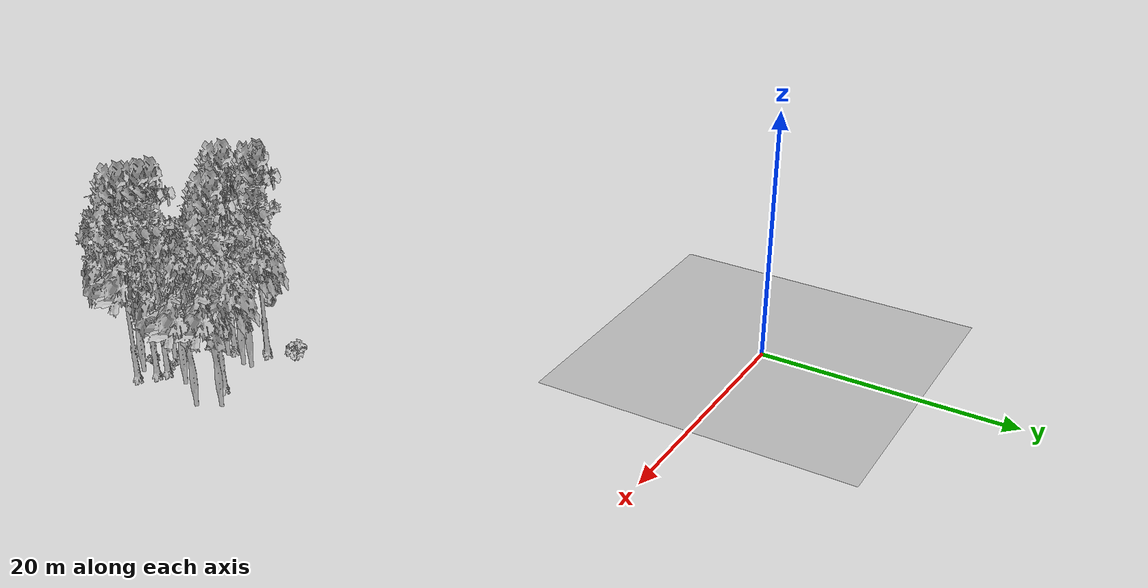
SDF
<sdf version="1.7">
 <world name="default">
  <model name="ground_plane">
   <static>1</static>
   <link name="link">
    <collision name="collision">
     <pose>-50 0 0 0 -0 0</pose>
     <geometry><plane><normal>0 0 1</normal><size>80 80</size></plane></geometry>
     <surface><contact><ode><min_depth>0.01</min_depth><max_vel>0</max_vel></ode></contact></surface>
    </collision>
    <visual name="grass">
     <cast_shadows>0</cast_shadows>
     <geometry>
      <mesh>
       <scale>0.46714285714285714 0.46714285714285714 0.1</scale>
       <uri>file://grass_plane/meshes/grass_plane.dae</uri>
      </mesh>
     </geometry>
    </visual>
   </link>
  </model>
  <model name="Tree 2">
   <static>1</static>
   <pose>21.608973467380785 -35.33875538457476 0 1.57079 -0 0</pose>
   <link name="link">
    <collision name="collision">
     <geometry><mesh><scale>3.5 5 3.5</scale><uri>model://tree_2/meshes/tree_2.obj</uri></mesh></geometry>
    </collision>
    <visual name="visual">
     <geometry><mesh><scale>3.5 5 3.5</scale><uri>model://tree_2/meshes/tree_2.obj</uri></mesh></geometry>
    </visual>
   </link>
  </model>
  <model name="Tree 47">
   <static>1</static>
   <pose>25.869457155707735 -37.62644119133291 0 1.57079 -0 0</pose>
   <link name="link">
    <collision name="collision">
     <geometry><mesh><scale>3.5 5 3.5</scale><uri>model://tree_9/meshes/tree_9.obj</uri></mesh></geometry>
    </collision>
    <visual name="visual">
     <geometry><mesh><scale>3.5 5 3.5</scale><uri>model://tree_9/meshes/tree_9.obj</uri></mesh></geometry>
    </visual>
   </link>
  </model>
  <model name="Tree 88">
   <static>1</static>
   <pose>25.355638875150163 -32.29025003243599 0 1.57079 -0 0</pose>
   <link name="link">
    <collision name="collision">
     <geometry><mesh><scale>3.5 5 3.5</scale><uri>model://tree_9/meshes/tree_9.obj</uri></mesh></geometry>
    </collision>
    <visual name="visual">
     <geometry><mesh><scale>3.5 5 3.5</scale><uri>model://tree_9/meshes/tree_9.obj</uri></mesh></geometry>
    </visual>
   </link>
  </model>
  <model name="Tree 117">
   <static>1</static>
   <pose>22.027832210913573 -32.55739553822966 0 1.57079 -0 0</pose>
   <link name="link">
    <collision name="collision">
     <geometry><mesh><scale>3.5 5 3.5</scale><uri>model://tree_2/meshes/tree_2.obj</uri></mesh></geometry>
    </collision>
    <visual name="visual">
     <geometry><mesh><scale>3.5 5 3.5</scale><uri>model://tree_2/meshes/tree_2.obj</uri></mesh></geometry>
    </visual>
   </link>
  </model>
  <model name="Tree 314">
   <static>1</static>
   <pose>19.71929100239216 -33.095928186460256 0 1.57079 -0 0</pose>
   <link name="link">
    <collision name="collision">
     <geometry><mesh><scale>3.5 5 3.5</scale><uri>model://tree_9/meshes/tree_9.obj</uri></mesh></geometry>
    </collision>
    <visual name="visual">
     <geometry><mesh><scale>3.5 5 3.5</scale><uri>model://tree_9/meshes/tree_9.obj</uri></mesh></geometry>
    </visual>
   </link>
  </model>
  <model name="Tree 330">
   <static>1</static>
   <pose>27.321533131071618 -30.615881601654927 0 1.57079 -0 0</pose>
   <link name="link">
    <collision name="collision">
     <geometry><mesh><scale>3.5 5 3.5</scale><uri>model://tree_2/meshes/tree_2.obj</uri></mesh></geometry>
    </collision>
    <visual name="visual">
     <geometry><mesh><scale>3.5 5 3.5</scale><uri>model://tree_2/meshes/tree_2.obj</uri></mesh></geometry>
    </visual>
   </link>
  </model>
  <model name="Tree 378">
   <static>1</static>
   <pose>26.55257672807339 -38.04444349236269 0 1.57079 -0 0</pose>
   <link name="link">
    <collision name="collision">
     <geometry><mesh><scale>3.5 5 3.5</scale><uri>model://tree_9/meshes/tree_9.obj</uri></mesh></geometry>
    </collision>
    <visual name="visual">
     <geometry><mesh><scale>3.5 5 3.5</scale><uri>model://tree_9/meshes/tree_9.obj</uri></mesh></geometry>
    </visual>
   </link>
  </model>
  <model name="Tree 405">
   <static>1</static>
   <pose>24.02431933473906 -37.44851633894263 0 1.57079 -0 0</pose>
   <link name="link">
    <collision name="collision">
     <geometry><mesh><scale>3.5 5 3.5</scale><uri>model://tree_2/meshes/tree_2.obj</uri></mesh></geometry>
    </collision>
    <visual name="visual">
     <geometry><mesh><scale>3.5 5 3.5</scale><uri>model://tree_2/meshes/tree_2.obj</uri></mesh></geometry>
    </visual>
   </link>
  </model>
  <model name="Tree 447">
   <static>1</static>
   <pose>22.056040395260347 -33.3468992721528 0 1.57079 -0 0</pose>
   <link name="link">
    <collision name="collision">
     <geometry><mesh><scale>3.5 5 3.5</scale><uri>model://tree_2/meshes/tree_2.obj</uri></mesh></geometry>
    </collision>
    <visual name="visual">
     <geometry><mesh><scale>3.5 5 3.5</scale><uri>model://tree_2/meshes/tree_2.obj</uri></mesh></geometry>
    </visual>
   </link>
  </model>
  <model name="Tree 453">
   <static>1</static>
   <pose>19.394317091972752 -33.46115470122737 0 1.57079 -0 0</pose>
   <link name="link">
    <collision name="collision">
     <geometry><mesh><scale>3.5 5 3.5</scale><uri>model://tree_9/meshes/tree_9.obj</uri></mesh></geometry>
    </collision>
    <visual name="visual">
     <geometry><mesh><scale>3.5 5 3.5</scale><uri>model://tree_9/meshes/tree_9.obj</uri></mesh></geometry>
    </visual>
   </link>
  </model>
  <model name="Tree 454">
   <static>1</static>
   <pose>28.241238900410366 -32.21158542593414 0 1.57079 -0 0</pose>
   <link name="link">
    <collision name="collision">
     <geometry><mesh><scale>3.5 5 3.5</scale><uri>model://tree_2/meshes/tree_2.obj</uri></mesh></geometry>
    </collision>
    <visual name="visual">
     <geometry><mesh><scale>3.5 5 3.5</scale><uri>model://tree_2/meshes/tree_2.obj</uri></mesh></geometry>
    </visual>
   </link>
  </model>
  <model name="Tree 469">
   <static>1</static>
   <pose>26.791310603787934 -39.078006564322436 0 1.57079 -0 0</pose>
   <link name="link">
    <collision name="collision">
     <geometry><mesh><scale>3.5 5 3.5</scale><uri>model://tree_2/meshes/tree_2.obj</uri></mesh></geometry>
    </collision>
    <visual name="visual">
     <geometry><mesh><scale>3.5 5 3.5</scale><uri>model://tree_2/meshes/tree_2.obj</uri></mesh></geometry>
    </visual>
   </link>
  </model>
  <model name="Tree 485">
   <static>1</static>
   <pose>27.67022086361615 -38.93454672484795 0 1.57079 -0 0</pose>
   <link name="link">
    <collision name="collision">
     <geometry><mesh><scale>3.5 5 3.5</scale><uri>model://tree_9/meshes/tree_9.obj</uri></mesh></geometry>
    </collision>
    <visual name="visual">
     <geometry><mesh><scale>3.5 5 3.5</scale><uri>model://tree_9/meshes/tree_9.obj</uri></mesh></geometry>
    </visual>
   </link>
  </model>
  <model name="Tree 600">
   <static>1</static>
   <pose>20.72466815331819 -35.5840623915011 0 1.57079 -0 0</pose>
   <link name="link">
    <collision name="collision">
     <geometry><mesh><scale>3.5 5 3.5</scale><uri>model://tree_9/meshes/tree_9.obj</uri></mesh></geometry>
    </collision>
    <visual name="visual">
     <geometry><mesh><scale>3.5 5 3.5</scale><uri>model://tree_9/meshes/tree_9.obj</uri></mesh></geometry>
    </visual>
   </link>
  </model>
  <model name="Tree 623">
   <static>1</static>
   <pose>26.427169034373975 -35.08096145605311 0 1.57079 -0 0</pose>
   <link name="link">
    <collision name="collision">
     <geometry><mesh><scale>3.5 5 3.5</scale><uri>model://tree_2/meshes/tree_2.obj</uri></mesh></geometry>
    </collision>
    <visual name="visual">
     <geometry><mesh><scale>3.5 5 3.5</scale><uri>model://tree_2/meshes/tree_2.obj</uri></mesh></geometry>
    </visual>
   </link>
  </model>
  <model name="Tree 636">
   <static>1</static>
   <pose>24.365278615958736 -38.23205802731308 0 1.57079 -0 0</pose>
   <link name="link">
    <collision name="collision">
     <geometry><mesh><scale>3.5 5 3.5</scale><uri>model://tree_2/meshes/tree_2.obj</uri></mesh></geometry>
    </collision>
    <visual name="visual">
     <geometry><mesh><scale>3.5 5 3.5</scale><uri>model://tree_2/meshes/tree_2.obj</uri></mesh></geometry>
    </visual>
   </link>
  </model>
  <model name="Bush 5">
   <static>1</static>
   <pose>21.250394875400687 -35.72269470915857 0 1.57079 -0 0</pose>
   <link name="link">
    <collision name="collision">
     <geometry><mesh><scale>2 2 2</scale><uri>model://bush_2/meshes/bush_2.obj</uri></mesh></geometry>
     <surface><contact><collide_without_contact>false</collide_without_contact></contact></surface>
    </collision>
    <visual name="visual">
     <geometry><mesh><scale>2 2 2</scale><uri>model://bush_2/meshes/bush_2.obj</uri></mesh></geometry>
    </visual>
   </link>
  </model>
  <model name="Bush 85">
   <static>1</static>
   <pose>21.970875419244493 -39.141250273955606 0 1.57079 -0 0</pose>
   <link name="link">
    <collision name="collision">
     <geometry><mesh><scale>2 2 2</scale><uri>model://bush_2/meshes/bush_2.obj</uri></mesh></geometry>
     <surface><contact><collide_without_contact>false</collide_without_contact></contact></surface>
    </collision>
    <visual name="visual">
     <geometry><mesh><scale>2 2 2</scale><uri>model://bush_2/meshes/bush_2.obj</uri></mesh></geometry>
    </visual>
   </link>
  </model>
  <model name="Bush 207">
   <static>1</static>
   <pose>25.335852047101127 -39.70689490056135 0 1.57079 -0 0</pose>
   <link name="link">
    <collision name="collision">
     <geometry><mesh><scale>2 2 2</scale><uri>model://bush_2/meshes/bush_2.obj</uri></mesh></geometry>
     <surface><contact><collide_without_contact>false</collide_without_contact></contact></surface>
    </collision>
    <visual name="visual">
     <geometry><mesh><scale>2 2 2</scale><uri>model://bush_2/meshes/bush_2.obj</uri></mesh></geometry>
    </visual>
   </link>
  </model>
  <model name="Bush 243">
   <static>1</static>
   <pose>23.526550749145677 -38.39133610960373 0 1.57079 -0 0</pose>
   <link name="link">
    <collision name="collision">
     <geometry><mesh><scale>2 2 2</scale><uri>model://bush_2/meshes/bush_2.obj</uri></mesh></geometry>
     <surface><contact><collide_without_contact>false</collide_without_contact></contact></surface>
    </collision>
    <visual name="visual">
     <geometry><mesh><scale>2 2 2</scale><uri>model://bush_2/meshes/bush_2.obj</uri></mesh></geometry>
    </visual>
   </link>
  </model>
  <model name="Bush 265">
   <static>1</static>
   <pose>21.287825253715837 -39.266217135695726 0 1.57079 -0 0</pose>
   <link name="link">
    <collision name="collision">
     <geometry><mesh><scale>2 2 2</scale><uri>model://bush_1/meshes/bush_1.obj</uri></mesh></geometry>
     <surface><contact><collide_without_contact>false</collide_without_contact></contact></surface>
    </collision>
    <visual name="visual">
     <geometry><mesh><scale>2 2 2</scale><uri>model://bush_1/meshes/bush_1.obj</uri></mesh></geometry>
    </visual>
   </link>
  </model>
  <model name="Bush 381">
   <static>1</static>
   <pose>19.744107185180944 -30.268392388027337 0 1.57079 -0 0</pose>
   <link name="link">
    <collision name="collision">
     <geometry><mesh><scale>2 2 2</scale><uri>model://bush_1/meshes/bush_1.obj</uri></mesh></geometry>
     <surface><contact><collide_without_contact>false</collide_without_contact></contact></surface>
    </collision>
    <visual name="visual">
     <geometry><mesh><scale>2 2 2</scale><uri>model://bush_1/meshes/bush_1.obj</uri></mesh></geometry>
    </visual>
   </link>
  </model>
  <model name="Bush 456">
   <static>1</static>
   <pose>25.096616064852796 -37.960009955514906 0 1.57079 -0 0</pose>
   <link name="link">
    <collision name="collision">
     <geometry><mesh><scale>2 2 2</scale><uri>model://bush_2/meshes/bush_2.obj</uri></mesh></geometry>
     <surface><contact><collide_without_contact>false</collide_without_contact></contact></surface>
    </collision>
    <visual name="visual">
     <geometry><mesh><scale>2 2 2</scale><uri>model://bush_2/meshes/bush_2.obj</uri></mesh></geometry>
    </visual>
   </link>
  </model>
  <model name="Bush 599">
   <static>1</static>
   <pose>21.663700469802656 -37.040502507790976 0 1.57079 -0 0</pose>
   <link name="link">
    <collision name="collision">
     <geometry><mesh><scale>2 2 2</scale><uri>model://bush_2/meshes/bush_2.obj</uri></mesh></geometry>
     <surface><contact><collide_without_contact>false</collide_without_contact></contact></surface>
    </collision>
    <visual name="visual">
     <geometry><mesh><scale>2 2 2</scale><uri>model://bush_2/meshes/bush_2.obj</uri></mesh></geometry>
    </visual>
   </link>
  </model>
 </world>
</sdf>
